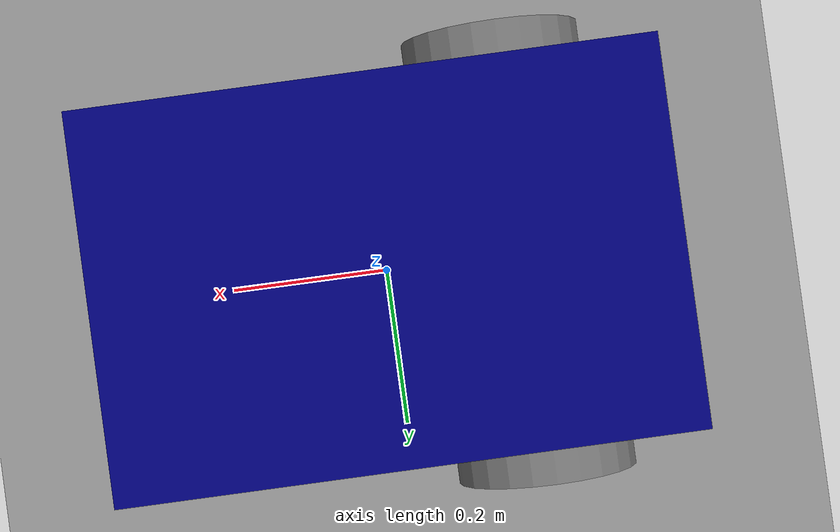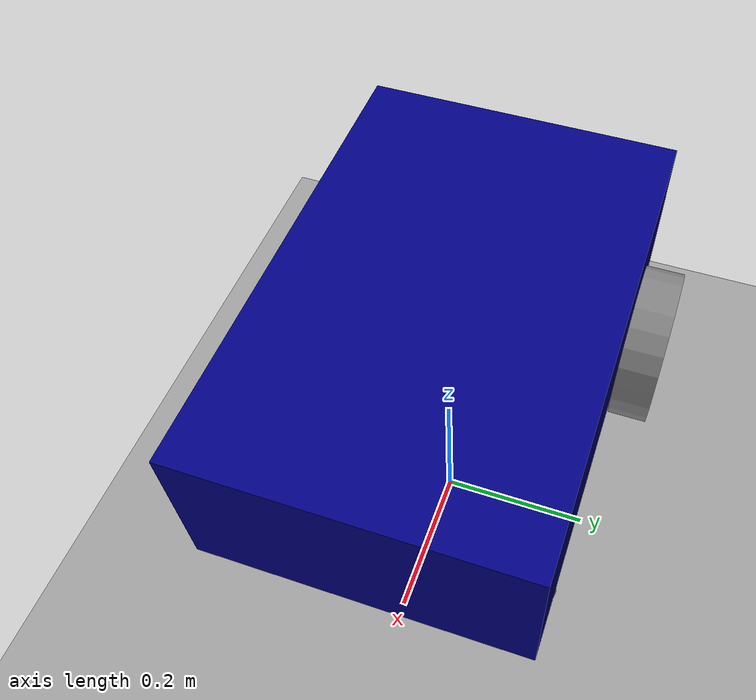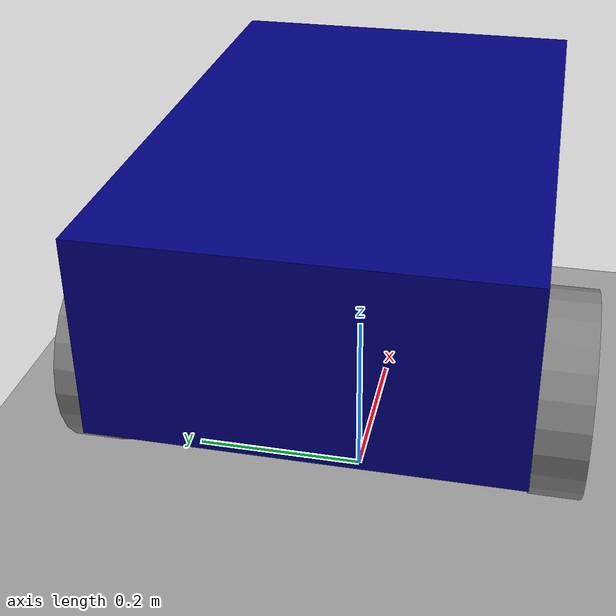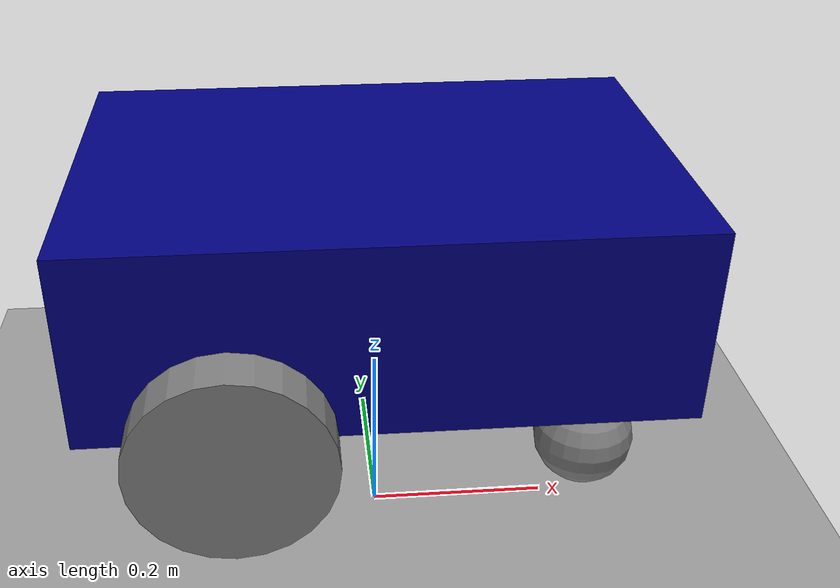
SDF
<?xml version="1.0"?>
<sdf version="1.10">
  <world name="flat_world">
    <gravity>0 0 -9.81</gravity>

    <!-- Ground plane -->
    <model name="ground_plane">
      <static>true</static>
      <link name="link">
        <collision name="collision">
          <geometry>
            <plane>
              <size>200 200</size>
              <normal>0 0 1</normal>
            </plane>
          </geometry>
          <surface>
            <friction>
              <ode>
                <mu>1.0</mu>
                <mu2>1.0</mu2>
              </ode>
            </friction>
          </surface>
        </collision>
        <visual name="visual">
          <geometry>
            <plane>
              <size>200 200</size>
              <normal>0 0 1</normal>
            </plane>
          </geometry>
          <material>
            <ambient>0.6 0.6 0.6 1</ambient>
            <diffuse>0.6 0.6 0.6 1</diffuse>
          </material>
        </visual>
      </link>
    </model>

    <!-- Include our car model -->
    <include>
      <uri>model://bldc_car</uri>
      <name>bldc_car</name>
      <pose>0 0 0.15 0 0 0</pose>
    </include>

    <scene>
      <ambient>0.4 0.4 0.4 1</ambient>
      <background>0.7 0.7 0.8 1</background>
    </scene>

    <light type="directional" name="sun">
      <cast_shadows>true</cast_shadows>
      <pose>0 0 10 0 0 0</pose>
      <diffuse>1 1 1 1</diffuse>
      <specular>0.2 0.2 0.2 1</specular>
      <direction>-0.5 0.1 -1</direction>
    </light>
  </world>
</sdf>

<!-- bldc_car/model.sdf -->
<sdf version="1.10">
  <model name="bldc_car">
    <static>false</static>
    <self_collide>false</self_collide>
    <enable_wind>false</enable_wind>

    <!-- ===================== CHASSIS (base_link) ===================== -->
    <link name="chassis">
      <!-- base_height=0.2 ⇒ yarısı 0.1; wheel_radius=0.1 ⇒ şasi merkezi z=0.1+0.1=0.2 -->
      <pose>0 0 0.2 0 0 0</pose>
      <inertial>
        <!-- xacro:box_inertia(m=5.0, x=0.6, y=0.4, z=0.2) -->
        <mass>5.0</mass>
        <inertia>
          <!-- Ixx=(m/12)(y^2+z^2)=0.0833333, Iyy=(m/12)(x^2+z^2)=0.1666667, Izz=(m/12)(x^2+y^2)=0.2166667 -->
          <ixx>0.0833333</ixx> <iyy>0.1666667</iyy> <izz>0.2166667</izz>
          <ixy>0</ixy> <ixz>0</ixz> <iyz>0</iyz>
        </inertia>
      </inertial>

      <collision name="chassis_collision">
        <geometry><box><size>0.6 0.4 0.2</size></box></geometry>
        <surface><friction><ode><mu>0.7</mu><mu2>0.7</mu2></ode></friction></surface>
      </collision>

      <visual name="chassis_visual">
        <geometry><box><size>0.6 0.4 0.2</size></box></geometry>
        <material>
          <!-- blue -->
          <ambient>0.0 0.0 0.5 1</ambient>
          <diffuse>0.0 0.0 0.5 1</diffuse>
          <specular>0.1 0.1 0.1 1</specular>
        </material>
      </visual>
    </link>

    <!-- ===================== REAR LEFT WHEEL ===================== -->
    <!-- x = -base_length/4 = -0.15
         y = +(base_width + wheel_length)/2 = +0.225  (iç düz yüzey şasi yan yüzüne teğet)
         z = wheel_radius - chassis_center_z = 0.1 - 0.2 = -0.1 -->
    <link name="rear_left_wheel">
      <pose relative_to="chassis">-0.15 0.225 -0.1 0 0 0</pose>
      <inertial>
        <!-- xacro:cylinder_inertia(m=1.0, r=0.1, l=0.05), o_rpy=pi/2 -->
        <mass>1.0</mass>
        <pose>0 0 0 1.5708 0 0</pose>
        <!-- 3r^2 + l^2 = 0.0325 ⇒ Ixx=Iyy=(1/12)*0.0325=0.00270833, Izz=(1/2)*r^2=0.005 -->
        <inertia>
          <ixx>0.00270833</ixx> <iyy>0.00270833</iyy> <izz>0.005</izz>
          <ixy>0</ixy> <ixz>0</ixz> <iyz>0</iyz>
        </inertia>
      </inertial>

      <collision name="rl_collision">
        <!-- teker: silindirin eksenini Y ile hizalamak için X etrafında 90° -->
        <pose>0 0 0 1.5708 0 0</pose>
        <geometry><cylinder><radius>0.1</radius><length>0.05</length></cylinder></geometry>
        <surface><friction><ode><mu>1.2</mu><mu2>1.2</mu2><slip1>0.02</slip1><slip2>0.02</slip2></ode></friction></surface>
      </collision>

      <visual name="rl_visual">
        <pose>0 0 0 1.5708 0 0</pose>
        <geometry><cylinder><radius>0.1</radius><length>0.05</length></cylinder></geometry>
        <material>
          <!-- grey -->
          <ambient>0.5 0.5 0.5 1</ambient>
          <diffuse>0.5 0.5 0.5 1</diffuse>
          <specular>0.1 0.1 0.1 1</specular>
        </material>
      </visual>
    </link>

    <!-- ===================== REAR RIGHT WHEEL ===================== -->
    <link name="rear_right_wheel">
      <pose relative_to="chassis">-0.15 -0.225 -0.1 0 0 0</pose>
      <inertial>
        <mass>1.0</mass>
        <pose>0 0 0 1.5708 0 0</pose>
        <inertia>
          <ixx>0.00270833</ixx> <iyy>0.00270833</iyy> <izz>0.005</izz>
          <ixy>0</ixy> <ixz>0</ixz> <iyz>0</iyz>
        </inertia>
      </inertial>

      <collision name="rr_collision">
        <pose>0 0 0 1.5708 0 0</pose>
        <geometry><cylinder><radius>0.1</radius><length>0.05</length></cylinder></geometry>
        <surface><friction><ode><mu>1.2</mu><mu2>1.2</mu2><slip1>0.02</slip1><slip2>0.02</slip2></ode></friction></surface>
      </collision>

      <visual name="rr_visual">
        <pose>0 0 0 1.5708 0 0</pose>
        <geometry><cylinder><radius>0.1</radius><length>0.05</length></cylinder></geometry>
        <material>
          <ambient>0.5 0.5 0.5 1</ambient>
          <diffuse>0.5 0.5 0.5 1</diffuse>
          <specular>0.1 0.1 0.1 1</specular>
        </material>
      </visual>
    </link>

    <!-- ===================== FRONT LEFT CASTER ===================== -->
    <!-- caster yarıçapı = 0.05 ⇒ merkez dünya z=0.05 ⇒ relative z = 0.05 - 0.2 = -0.15 -->
    <link name="front_left_caster">
      <pose relative_to="chassis">0.20 0.15 -0.15 0 0 0</pose>
      <inertial>
        <!-- xacro:sphere_inertia(m=0.5, r=0.05) ⇒ I=0.0005 -->
        <mass>0.5</mass>
        <inertia>
          <ixx>0.0005</ixx> <iyy>0.0005</iyy> <izz>0.0005</izz>
          <ixy>0</ixy> <ixz>0</ixz> <iyz>0</iyz>
        </inertia>
      </inertial>

      <collision name="flc_collision">
        <geometry><sphere><radius>0.05</radius></sphere></geometry>
        <surface><friction><ode><mu>0.10</mu><mu2>0.10</mu2></ode></friction></surface>
      </collision>

      <visual name="flc_visual">
        <geometry><sphere><radius>0.05</radius></sphere></geometry>
        <material>
          <ambient>0.5 0.5 0.5 1</ambient>
          <diffuse>0.5 0.5 0.5 1</diffuse>
          <specular>0.1 0.1 0.1 1</specular>
        </material>
      </visual>
    </link>

    <!-- ===================== FRONT RIGHT CASTER ===================== -->
    <link name="front_right_caster">
      <pose relative_to="chassis">0.20 -0.15 -0.15 0 0 0</pose>
      <inertial>
        <mass>0.5</mass>
        <inertia>
          <ixx>0.0005</ixx> <iyy>0.0005</iyy> <izz>0.0005</izz>
          <ixy>0</ixy> <ixz>0</ixz> <iyz>0</iyz>
        </inertia>
      </inertial>

      <collision name="frc_collision">
        <geometry><sphere><radius>0.05</radius></sphere></geometry>
        <surface><friction><ode><mu>0.10</mu><mu2>0.10</mu2></ode></friction></surface>
      </collision>

      <visual name="frc_visual">
        <geometry><sphere><radius>0.05</radius></sphere></geometry>
        <material>
          <ambient>0.5 0.5 0.5 1</ambient>
          <diffuse>0.5 0.5 0.5 1</diffuse>
          <specular>0.1 0.1 0.1 1</specular>
        </material>
      </visual>
    </link>

    <!-- ===================== JOINTS ===================== -->
    <joint name="rear_left_wheel_joint" type="revolute">
      <parent>chassis</parent>
      <child>rear_left_wheel</child>
      <axis>
        <xyz>0 1 0</xyz>
        <limit><lower>-1e16</lower><upper>1e16</upper></limit>
        <dynamics><friction>0.02</friction><damping>0.01</damping></dynamics>
      </axis>
    </joint>

    <joint name="rear_right_wheel_joint" type="revolute">
      <parent>chassis</parent>
      <child>rear_right_wheel</child>
      <axis>
        <xyz>0 1 0</xyz>
        <limit><lower>-1e16</lower><upper>1e16</upper></limit>
        <dynamics><friction>0.02</friction><damping>0.01</damping></dynamics>
      </axis>
    </joint>

    <!-- Caster'lar: UNIVERSAL joint, damping eksenler altında -->
    <joint name="front_left_caster_joint" type="universal">
      <parent>chassis</parent>
      <child>front_left_caster</child>
      <axis>
        <xyz>0 0 1</xyz>
        <dynamics><damping>0.2</damping></dynamics>
      </axis>
      <axis2>
        <xyz>0 1 0</xyz>
        <dynamics><damping>0.2</damping></dynamics>
      </axis2>
    </joint>

    <joint name="front_right_caster_joint" type="universal">
      <parent>chassis</parent>
      <child>front_right_caster</child>
      <axis>
        <xyz>0 0 1</xyz>
        <dynamics><damping>0.2</damping></dynamics>
      </axis>
      <axis2>
        <xyz>0 1 0</xyz>
        <dynamics><damping>0.2</damping></dynamics>
      </axis2>
    </joint>

    <!-- ===================== (Opsiyonel) BLDC MOTOR PLUGINS ===================== -->
    <plugin filename="libbldc_motor_plugin.so" name="BLDCMotorPlugin">
      <ros><namespace>/rear_left</namespace></ros>
      <joint_name>rear_left_wheel_joint</joint_name>
      <voltage_topic>voltage_cmd</voltage_topic>
      <use_ros_voltage_sub>true</use_ros_voltage_sub>
      <state_topic>state</state_topic>
      <kv_rads_per_volt>25.0</kv_rads_per_volt>
      <torque_constant>0.05</torque_constant>
      <resistance_ohm>0.5</resistance_ohm>
      <gear_ratio>1.0</gear_ratio>
    </plugin>

    <plugin filename="libbldc_motor_plugin.so" name="BLDCMotorPlugin">
      <ros><namespace>/rear_right</namespace></ros>
      <joint_name>rear_right_wheel_joint</joint_name>
      <voltage_topic>voltage_cmd</voltage_topic>
      <use_ros_voltage_sub>true</use_ros_voltage_sub>
      <state_topic>state</state_topic>
      <kv_rads_per_volt>25.0</kv_rads_per_volt>
      <torque_constant>0.05</torque_constant>
      <resistance_ohm>0.5</resistance_ohm>
      <gear_ratio>1.0</gear_ratio>
    </plugin>

  </model>
</sdf>
